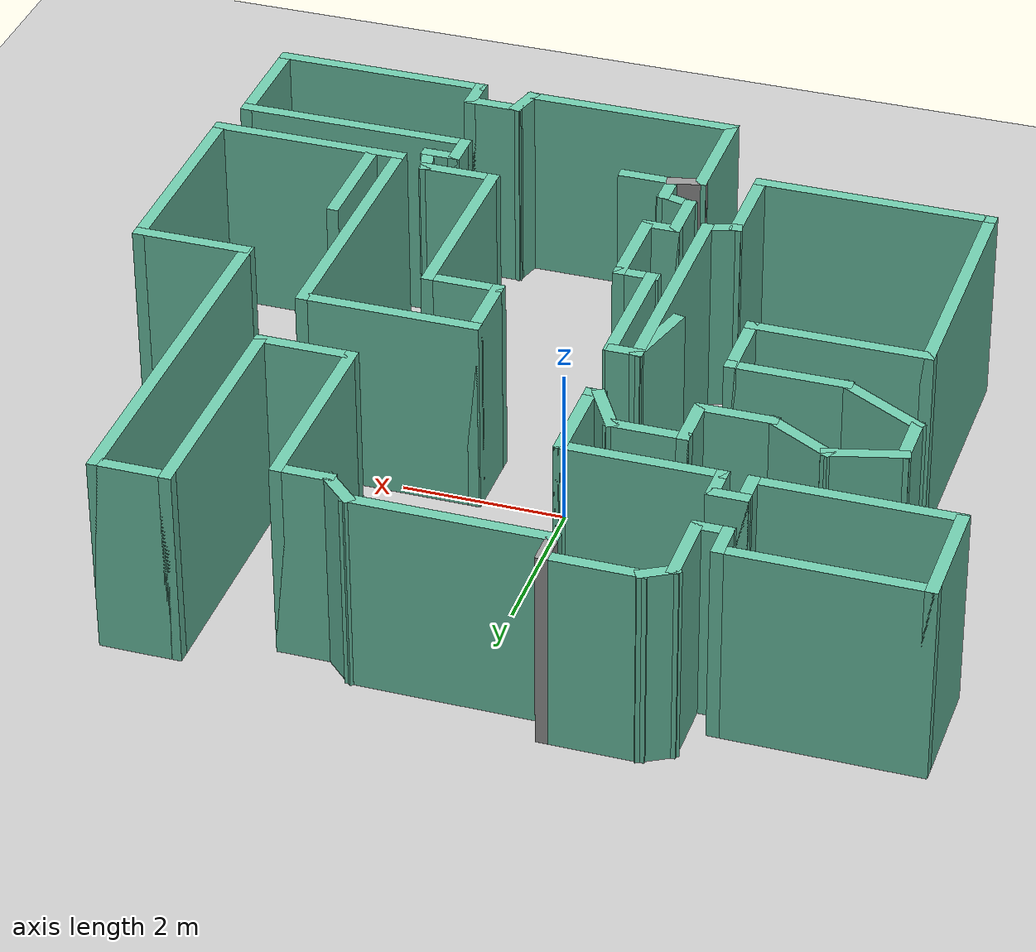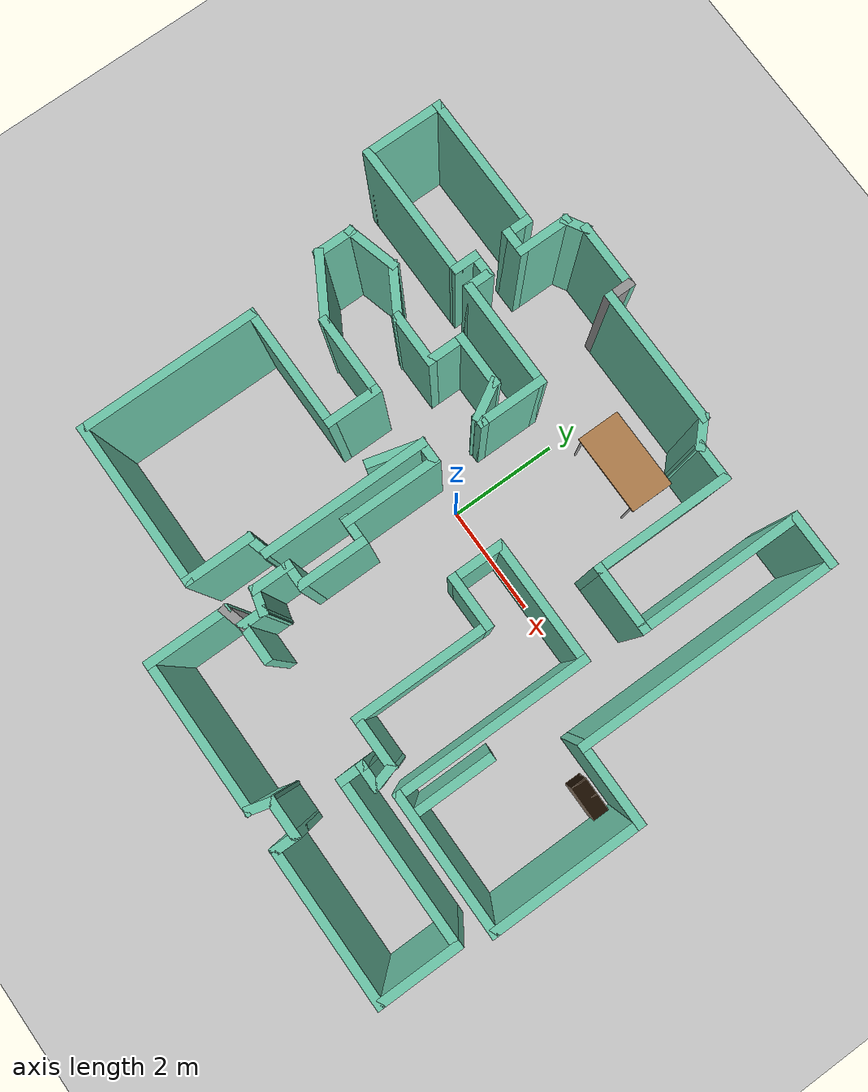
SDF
<sdf version="1.6">
 <world name="default">
  <light name="sun" type="directional">
   <pose>0 0 10 0 -0 0</pose>
   <diffuse>0.8 0.8 0.8 1</diffuse>
   <specular>0.2 0.2 0.2 1</specular>
   <attenuation>
    <range>1000</range>
    <constant>0.9</constant>
    <linear>0.01</linear>
    <quadratic>0.001</quadratic>
   </attenuation>
   <direction>-0.5 0.1 -0.9</direction>
  </light>
  <model name="ground_plane">
   <static>1</static>
   <link name="link">
    <collision name="collision">
     <geometry><plane><normal>0 0 1</normal><size>100 100</size></plane></geometry>
     <surface>
      <contact><collide_bitmask>65535</collide_bitmask></contact>
      <friction><ode><mu>100</mu><mu2>50</mu2></ode></friction>
     </surface>
    </collision>
    <visual name="visual">
     <cast_shadows>0</cast_shadows>
     <geometry><plane><normal>0 0 1</normal><size>100 100</size></plane></geometry>
     <material>
      <script><uri>file://media/materials/scripts/gazebo.material</uri><name>Gazebo/Grey</name></script>
     </material>
    </visual>
   </link>
  </model>
  <gravity>0 0 -9.8</gravity>
  <magnetic_field>6e-06 2.3e-05 -4.2e-05</magnetic_field>
  <atmosphere type="adiabatic"/>
  <physics name="default_physics" default="0" type="ode">
   <max_step_size>0.001</max_step_size>
   <real_time_factor>1</real_time_factor>
   <real_time_update_rate>1000</real_time_update_rate>
  </physics>
  <scene><ambient>0.4 0.4 0.4 1</ambient><background>0.7 0.7 0.7 1</background><shadows>1</shadows></scene>
  <audio><device>default</device></audio>
  <spherical_coordinates>
   <surface_model>EARTH_WGS84</surface_model>
   <latitude_deg>0</latitude_deg>
   <longitude_deg>0</longitude_deg>
   <elevation>0</elevation>
   <heading_deg>0</heading_deg>
  </spherical_coordinates>
  <model name="map_52">
   <pose>0.195887 -0.58659 0 0 -0 0</pose>
   <link name="Wall_0">
    <collision name="Wall_0_Collision">
     <geometry><box><size>2.5 0.15 2.5</size></box></geometry>
     <pose>0 0 1.25 0 -0 0</pose>
    </collision>
    <visual name="Wall_0_Visual">
     <pose>0 0 1.25 0 -0 0</pose>
     <geometry><box><size>2.5 0.15 2.5</size></box></geometry>
     <material>
      <script><uri>file://media/materials/scripts/gazebo.material</uri><name>Gazebo/Grey</name></script>
      <ambient>0.435294 0.796078 0.67451 1</ambient>
     </material>
     <meta><layer>0</layer></meta>
    </visual>
    <pose>-0.063663 4.26519 0 0 -0 3.14159</pose>
   </link>
   <link name="Wall_1">
    <collision name="Wall_1_Collision">
     <geometry><box><size>0.5 0.15 2.5</size></box></geometry>
     <pose>0 0 1.25 0 -0 0</pose>
    </collision>
    <visual name="Wall_1_Visual">
     <pose>0 0 1.25 0 -0 0</pose>
     <geometry><box><size>0.5 0.15 2.5</size></box></geometry>
     <material>
      <script><uri>file://media/materials/scripts/gazebo.material</uri><name>Gazebo/Grey</name></script>
      <ambient>1 1 1 1</ambient>
     </material>
     <meta><layer>0</layer></meta>
    </visual>
    <pose>-1.23866 4.44019 0 0 -0 1.5708</pose>
   </link>
   <link name="Wall_10">
    <collision name="Wall_10_Collision">
     <geometry><box><size>1.5 0.15 2.5</size></box></geometry>
     <pose>0 0 1.25 0 -0 0</pose>
    </collision>
    <visual name="Wall_10_Visual">
     <pose>0 0 1.25 0 -0 0</pose>
     <geometry><box><size>1.5 0.15 2.5</size></box></geometry>
     <material>
      <script><uri>file://media/materials/scripts/gazebo.material</uri><name>Gazebo/Grey</name></script>
      <ambient>0.435294 0.796078 0.67451 1</ambient>
     </material>
     <meta><layer>0</layer></meta>
    </visual>
    <pose>-5.34177 3.26519 0 0 -0 -1.5708</pose>
   </link>
   <link name="Wall_11">
    <collision name="Wall_11_Collision">
     <geometry><box><size>2.5 0.15 2.5</size></box></geometry>
     <pose>0 0 1.25 0 -0 0</pose>
    </collision>
    <visual name="Wall_11_Visual">
     <pose>0 0 1.25 0 -0 0</pose>
     <geometry><box><size>2.5 0.15 2.5</size></box></geometry>
     <material>
      <script><uri>file://media/materials/scripts/gazebo.material</uri><name>Gazebo/Grey</name></script>
      <ambient>0.435294 0.796078 0.67451 1</ambient>
     </material>
     <meta><layer>0</layer></meta>
    </visual>
    <pose>-4.16677 2.59019 0 0 -0 0</pose>
   </link>
   <link name="Wall_12">
    <collision name="Wall_12_Collision">
     <geometry><box><size>0.5 0.15 2.5</size></box></geometry>
     <pose>0 0 1.25 0 -0 0</pose>
    </collision>
    <visual name="Wall_12_Visual">
     <pose>0 0 1.25 0 -0 0</pose>
     <geometry><box><size>0.5 0.15 2.5</size></box></geometry>
     <material>
      <script><uri>file://media/materials/scripts/gazebo.material</uri><name>Gazebo/Grey</name></script>
      <ambient>0.435294 0.796078 0.67451 1</ambient>
     </material>
     <meta><layer>0</layer></meta>
    </visual>
    <pose>-2.99177 2.76519 0 0 -0 1.5708</pose>
   </link>
   <link name="Wall_13">
    <collision name="Wall_13_Collision">
     <geometry><box><size>0.5 0.15 2.5</size></box></geometry>
     <pose>0 0 1.25 0 -0 0</pose>
    </collision>
    <visual name="Wall_13_Visual">
     <pose>0 0 1.25 0 -0 0</pose>
     <geometry><box><size>0.5 0.15 2.5</size></box></geometry>
     <material>
      <script><uri>file://media/materials/scripts/gazebo.material</uri><name>Gazebo/Grey</name></script>
      <ambient>0.435294 0.796078 0.67451 1</ambient>
     </material>
     <meta><layer>0</layer></meta>
    </visual>
    <pose>-2.81677 2.94019 0 0 -0 0</pose>
   </link>
   <link name="Wall_14">
    <collision name="Wall_14_Collision">
     <geometry><box><size>0.5 0.15 2.5</size></box></geometry>
     <pose>0 0 1.25 0 -0 0</pose>
    </collision>
    <visual name="Wall_14_Visual">
     <pose>0 0 1.25 0 -0 0</pose>
     <geometry><box><size>0.5 0.15 2.5</size></box></geometry>
     <material>
      <script><uri>file://media/materials/scripts/gazebo.material</uri><name>Gazebo/Grey</name></script>
      <ambient>0.435294 0.796078 0.67451 1</ambient>
     </material>
     <meta><layer>0</layer></meta>
    </visual>
    <pose>-2.64177 2.76519 0 0 -0 -1.5708</pose>
   </link>
   <link name="Wall_15">
    <collision name="Wall_15_Collision">
     <geometry><box><size>2 0.15 2.5</size></box></geometry>
     <pose>0 0 1.25 0 -0 0</pose>
    </collision>
    <visual name="Wall_15_Visual">
     <pose>0 0 1.25 0 -0 0</pose>
     <geometry><box><size>2 0.15 2.5</size></box></geometry>
     <material>
      <script><uri>file://media/materials/scripts/gazebo.material</uri><name>Gazebo/Grey</name></script>
      <ambient>0.435294 0.796078 0.67451 1</ambient>
     </material>
     <meta><layer>0</layer></meta>
    </visual>
    <pose>-1.71677 2.59019 0 0 -0 0</pose>
   </link>
   <link name="Wall_16">
    <collision name="Wall_16_Collision">
     <geometry><box><size>1.25 0.15 2.5</size></box></geometry>
     <pose>0 0 1.25 0 -0 0</pose>
    </collision>
    <visual name="Wall_16_Visual">
     <pose>0 0 1.25 0 -0 0</pose>
     <geometry><box><size>1.25 0.15 2.5</size></box></geometry>
     <material>
      <script><uri>file://media/materials/scripts/gazebo.material</uri><name>Gazebo/Grey</name></script>
      <ambient>0.435294 0.796078 0.67451 1</ambient>
     </material>
     <meta><layer>0</layer></meta>
    </visual>
    <pose>-0.791772 2.04019 0 0 -0 -1.5708</pose>
   </link>
   <link name="Wall_17">
    <collision name="Wall_17_Collision">
     <geometry><box><size>0.25 0.15 2.5</size></box></geometry>
     <pose>0 0 1.25 0 -0 0</pose>
    </collision>
    <visual name="Wall_17_Visual">
     <pose>0 0 1.25 0 -0 0</pose>
     <geometry><box><size>0.25 0.15 2.5</size></box></geometry>
     <material>
      <script><uri>file://media/materials/scripts/gazebo.material</uri><name>Gazebo/Grey</name></script>
      <ambient>0.435294 0.796078 0.67451 1</ambient>
     </material>
     <meta><layer>0</layer></meta>
    </visual>
    <pose>-0.841772 1.49019 0 0 -0 3.14159</pose>
   </link>
   <link name="Wall_18">
    <collision name="Wall_18_Collision">
     <geometry><box><size>0.75 0.15 2.5</size></box></geometry>
     <pose>0 0 1.25 0 -0 0</pose>
    </collision>
    <visual name="Wall_18_Visual">
     <pose>0 0 1.25 0 -0 0</pose>
     <geometry><box><size>0.75 0.15 2.5</size></box></geometry>
     <material>
      <script><uri>file://media/materials/scripts/gazebo.material</uri><name>Gazebo/Grey</name></script>
      <ambient>0.435294 0.796078 0.67451 1</ambient>
     </material>
     <meta><layer>0</layer></meta>
    </visual>
    <pose>-1.04177 1.74999 0 0 -0 2.0944</pose>
   </link>
   <link name="Wall_19">
    <collision name="Wall_19_Collision">
     <geometry><box><size>1 0.15 2.5</size></box></geometry>
     <pose>0 0 1.25 0 -0 0</pose>
    </collision>
    <visual name="Wall_19_Visual">
     <pose>0 0 1.25 0 -0 0</pose>
     <geometry><box><size>1 0.15 2.5</size></box></geometry>
     <material>
      <script><uri>file://media/materials/scripts/gazebo.material</uri><name>Gazebo/Grey</name></script>
      <ambient>0.435294 0.796078 0.67451 1</ambient>
     </material>
     <meta><layer>0</layer></meta>
    </visual>
    <pose>-1.61677 2.0098 0 0 -0 3.14159</pose>
   </link>
   <link name="Wall_2">
    <collision name="Wall_2_Collision">
     <geometry><box><size>1.25 0.15 2.5</size></box></geometry>
     <pose>0 0 1.25 0 -0 0</pose>
    </collision>
    <visual name="Wall_2_Visual">
     <pose>0 0 1.25 0 -0 0</pose>
     <geometry><box><size>1.25 0.15 2.5</size></box></geometry>
     <material>
      <script><uri>file://media/materials/scripts/gazebo.material</uri><name>Gazebo/Grey</name></script>
      <ambient>0.435294 0.796078 0.67451 1</ambient>
     </material>
     <meta><layer>0</layer></meta>
    </visual>
    <pose>-1.78866 4.61519 0 0 -0 3.14159</pose>
   </link>
   <link name="Wall_20">
    <collision name="Wall_20_Collision">
     <geometry><box><size>0.75 0.15 2.5</size></box></geometry>
     <pose>0 0 1.25 0 -0 0</pose>
    </collision>
    <visual name="Wall_20_Visual">
     <pose>0 0 1.25 0 -0 0</pose>
     <geometry><box><size>0.75 0.15 2.5</size></box></geometry>
     <material>
      <script><uri>file://media/materials/scripts/gazebo.material</uri><name>Gazebo/Grey</name></script>
      <ambient>0.435294 0.796078 0.67451 1</ambient>
     </material>
     <meta><layer>0</layer></meta>
    </visual>
    <pose>-2.04177 1.7098 0 0 -0 -1.5708</pose>
   </link>
   <link name="Wall_21">
    <collision name="Wall_21_Collision">
     <geometry><box><size>1 0.15 2.5</size></box></geometry>
     <pose>0 0 1.25 0 -0 0</pose>
    </collision>
    <visual name="Wall_21_Visual">
     <pose>0 0 1.25 0 -0 0</pose>
     <geometry><box><size>1 0.15 2.5</size></box></geometry>
     <material>
      <script><uri>file://media/materials/scripts/gazebo.material</uri><name>Gazebo/Grey</name></script>
      <ambient>0.435294 0.796078 0.67451 1</ambient>
     </material>
     <meta><layer>0</layer></meta>
    </visual>
    <pose>-2.46677 1.4098 0 0 -0 3.14159</pose>
   </link>
   <link name="Wall_22">
    <collision name="Wall_22_Collision">
     <geometry><box><size>1 0.15 2.5</size></box></geometry>
     <pose>0 0 1.25 0 -0 0</pose>
    </collision>
    <visual name="Wall_22_Visual">
     <pose>0 0 1.25 0 -0 0</pose>
     <geometry><box><size>1 0.15 2.5</size></box></geometry>
     <material>
      <script><uri>file://media/materials/scripts/gazebo.material</uri><name>Gazebo/Grey</name></script>
      <ambient>0.435294 0.796078 0.67451 1</ambient>
     </material>
     <meta><layer>0</layer></meta>
    </visual>
    <pose>-3.25983 1.6223 0 0 -0 2.61799</pose>
   </link>
   <link name="Wall_23">
    <collision name="Wall_23_Collision">
     <geometry><box><size>1 0.15 2.5</size></box></geometry>
     <pose>0 0 1.25 0 -0 0</pose>
    </collision>
    <visual name="Wall_23_Visual">
     <pose>0 0 1.25 0 -0 0</pose>
     <geometry><box><size>1 0.15 2.5</size></box></geometry>
     <material>
      <script><uri>file://media/materials/scripts/gazebo.material</uri><name>Gazebo/Grey</name></script>
      <ambient>0.435294 0.796078 0.67451 1</ambient>
     </material>
     <meta><layer>0</layer></meta>
    </visual>
    <pose>-4.03841 1.7248 0 0 -0 -2.87979</pose>
   </link>
   <link name="Wall_24">
    <collision name="Wall_24_Collision">
     <geometry><box><size>0.75 0.15 2.5</size></box></geometry>
     <pose>0 0 1.25 0 -0 0</pose>
    </collision>
    <visual name="Wall_24_Visual">
     <pose>0 0 1.25 0 -0 0</pose>
     <geometry><box><size>0.75 0.15 2.5</size></box></geometry>
     <material>
      <script><uri>file://media/materials/scripts/gazebo.material</uri><name>Gazebo/Grey</name></script>
      <ambient>0.435294 0.796078 0.67451 1</ambient>
     </material>
     <meta><layer>0</layer></meta>
    </visual>
    <pose>-4.44893 1.31481 0 0 -0 -1.5708</pose>
   </link>
   <link name="Wall_25">
    <collision name="Wall_25_Collision">
     <geometry><box><size>1.25 0.15 2.5</size></box></geometry>
     <pose>0 0 1.25 0 -0 0</pose>
    </collision>
    <visual name="Wall_25_Visual">
     <pose>0 0 1.25 0 -0 0</pose>
     <geometry><box><size>1.25 0.15 2.5</size></box></geometry>
     <material>
      <script><uri>file://media/materials/scripts/gazebo.material</uri><name>Gazebo/Grey</name></script>
      <ambient>0.435294 0.796078 0.67451 1</ambient>
     </material>
     <meta><layer>0</layer></meta>
    </visual>
    <pose>-3.97262 0.739805 0 0 -0 -0.523599</pose>
   </link>
   <link name="Wall_26">
    <collision name="Wall_26_Collision">
     <geometry><box><size>1.5 0.15 2.5</size></box></geometry>
     <pose>0 0 1.25 0 -0 0</pose>
    </collision>
    <visual name="Wall_26_Visual">
     <pose>0 0 1.25 0 -0 0</pose>
     <geometry><box><size>1.5 0.15 2.5</size></box></geometry>
     <material>
      <script><uri>file://media/materials/scripts/gazebo.material</uri><name>Gazebo/Grey</name></script>
      <ambient>0.435294 0.796078 0.67451 1</ambient>
     </material>
     <meta><layer>0</layer></meta>
    </visual>
    <pose>-2.8213 0.464805 0 0 -0 0</pose>
   </link>
   <link name="Wall_29">
    <collision name="Wall_29_Collision">
     <geometry><box><size>1 0.15 2.5</size></box></geometry>
     <pose>0 0 1.25 0 -0 0</pose>
    </collision>
    <visual name="Wall_29_Visual">
     <pose>0 0 1.25 0 -0 0</pose>
     <geometry><box><size>1 0.15 2.5</size></box></geometry>
     <material>
      <script><uri>file://media/materials/scripts/gazebo.material</uri><name>Gazebo/Grey</name></script>
      <ambient>0.435294 0.796078 0.67451 1</ambient>
     </material>
     <meta><layer>0</layer></meta>
    </visual>
    <pose>-2.1463 0.039805 0 0 -0 -1.5708</pose>
   </link>
   <link name="Wall_3">
    <collision name="Wall_3_Collision">
     <geometry><box><size>0.5 0.15 2.5</size></box></geometry>
     <pose>0 0 1.25 0 -0 0</pose>
    </collision>
    <visual name="Wall_3_Visual">
     <pose>0 0 1.25 0 -0 0</pose>
     <geometry><box><size>0.5 0.15 2.5</size></box></geometry>
     <material>
      <script><uri>file://media/materials/scripts/gazebo.material</uri><name>Gazebo/Grey</name></script>
      <ambient>0.435294 0.796078 0.67451 1</ambient>
     </material>
     <meta><layer>0</layer></meta>
    </visual>
    <pose>-2.49022 4.52769 0 0 -0 -2.61799</pose>
   </link>
   <link name="Wall_30">
    <collision name="Wall_30_Collision">
     <geometry><box><size>2.25 0.15 2.5</size></box></geometry>
     <pose>0 0 1.25 0 -0 0</pose>
    </collision>
    <visual name="Wall_30_Visual">
     <pose>0 0 1.25 0 -0 0</pose>
     <geometry><box><size>2.25 0.15 2.5</size></box></geometry>
     <material>
      <script><uri>file://media/materials/scripts/gazebo.material</uri><name>Gazebo/Grey</name></script>
      <ambient>0.435294 0.796078 0.67451 1</ambient>
     </material>
     <meta><layer>0</layer></meta>
    </visual>
    <pose>-3.1963 -0.385195 0 0 -0 3.14159</pose>
   </link>
   <link name="Wall_31">
    <collision name="Wall_31_Collision">
     <geometry><box><size>3.25 0.15 2.5</size></box></geometry>
     <pose>0 0 1.25 0 -0 0</pose>
    </collision>
    <visual name="Wall_31_Visual">
     <pose>0 0 1.25 0 -0 0</pose>
     <geometry><box><size>3.25 0.15 2.5</size></box></geometry>
     <material>
      <script><uri>file://media/materials/scripts/gazebo.material</uri><name>Gazebo/Grey</name></script>
      <ambient>0.435294 0.796078 0.67451 1</ambient>
     </material>
     <meta><layer>0</layer></meta>
    </visual>
    <pose>-4.2463 -1.93519 0 0 -0 -1.5708</pose>
   </link>
   <link name="Wall_32">
    <collision name="Wall_32_Collision">
     <geometry><box><size>3 0.15 2.5</size></box></geometry>
     <pose>0 0 1.25 0 -0 0</pose>
    </collision>
    <visual name="Wall_32_Visual">
     <pose>0 0 1.25 0 -0 0</pose>
     <geometry><box><size>3 0.15 2.5</size></box></geometry>
     <material>
      <script><uri>file://media/materials/scripts/gazebo.material</uri><name>Gazebo/Grey</name></script>
      <ambient>0.435294 0.796078 0.67451 1</ambient>
     </material>
     <meta><layer>0</layer></meta>
    </visual>
    <pose>-2.8213 -3.4852 0 0 -0 0</pose>
   </link>
   <link name="Wall_33">
    <collision name="Wall_33_Collision">
     <geometry><box><size>1.25 0.15 2.5</size></box></geometry>
     <pose>0 0 1.25 0 -0 0</pose>
    </collision>
    <visual name="Wall_33_Visual">
     <pose>0 0 1.25 0 -0 0</pose>
     <geometry><box><size>1.25 0.15 2.5</size></box></geometry>
     <material>
      <script><uri>file://media/materials/scripts/gazebo.material</uri><name>Gazebo/Grey</name></script>
      <ambient>0.435294 0.796078 0.67451 1</ambient>
     </material>
     <meta><layer>0</layer></meta>
    </visual>
    <pose>-1.3963 -2.9352 0 0 -0 1.5708</pose>
   </link>
   <link name="Wall_34">
    <collision name="Wall_34_Collision">
     <geometry><box><size>0.5 0.15 2.5</size></box></geometry>
     <pose>0 0 1.25 0 -0 0</pose>
    </collision>
    <visual name="Wall_34_Visual">
     <pose>0 0 1.25 0 -0 0</pose>
     <geometry><box><size>0.5 0.15 2.5</size></box></geometry>
     <material>
      <script><uri>file://media/materials/scripts/gazebo.material</uri><name>Gazebo/Grey</name></script>
      <ambient>0.435294 0.796078 0.67451 1</ambient>
     </material>
     <meta><layer>0</layer></meta>
    </visual>
    <pose>-1.22727 -2.3399 0 0 -0 0.261799</pose>
   </link>
   <link name="Wall_35">
    <collision name="Wall_35_Collision">
     <geometry><box><size>3 0.15 2.5</size></box></geometry>
     <pose>0 0 1.25 0 -0 0</pose>
    </collision>
    <visual name="Wall_35_Visual">
     <pose>0 0 1.25 0 -0 0</pose>
     <geometry><box><size>3 0.15 2.5</size></box></geometry>
     <material>
      <script><uri>file://media/materials/scripts/gazebo.material</uri><name>Gazebo/Grey</name></script>
      <ambient>0.435294 0.796078 0.67451 1</ambient>
     </material>
     <meta><layer>0</layer></meta>
    </visual>
    <pose>-1.05823 -0.869609 0 0 -0 1.5708</pose>
   </link>
   <link name="Wall_36">
    <collision name="Wall_36_Collision">
     <geometry><box><size>0.43882 0.15 2.5</size></box></geometry>
     <pose>0 0 1.25 0 -0 0</pose>
    </collision>
    <visual name="Wall_36_Visual">
     <pose>0 0 1.25 0 -0 0</pose>
     <geometry><box><size>0.43882 0.15 2.5</size></box></geometry>
     <material>
      <script><uri>file://media/materials/scripts/gazebo.material</uri><name>Gazebo/Grey</name></script>
      <ambient>0.435294 0.796078 0.67451 1</ambient>
     </material>
     <meta><layer>0</layer></meta>
    </visual>
    <pose>-0.913819 0.555391 0 0 -0 0</pose>
   </link>
   <link name="Wall_4">
    <collision name="Wall_4_Collision">
     <geometry><box><size>1 0.15 2.5</size></box></geometry>
     <pose>0 0 1.25 0 -0 0</pose>
    </collision>
    <visual name="Wall_4_Visual">
     <pose>0 0 1.25 0 -0 0</pose>
     <geometry><box><size>1 0.15 2.5</size></box></geometry>
     <material>
      <script><uri>file://media/materials/scripts/gazebo.material</uri><name>Gazebo/Grey</name></script>
      <ambient>0.435294 0.796078 0.67451 1</ambient>
     </material>
     <meta><layer>0</layer></meta>
    </visual>
    <pose>-2.64177 4.01519 0 0 -0 -1.5708</pose>
   </link>
   <link name="Wall_41">
    <collision name="Wall_41_Collision">
     <geometry><box><size>1.75 0.15 2.5</size></box></geometry>
     <pose>0 0 1.25 0 -0 0</pose>
    </collision>
    <visual name="Wall_41_Visual">
     <pose>0 0 1.25 0 -0 0</pose>
     <geometry><box><size>1.75 0.15 2.5</size></box></geometry>
     <material>
      <script><uri>file://media/materials/scripts/gazebo.material</uri><name>Gazebo/Grey</name></script>
      <ambient>0.435294 0.796078 0.67451 1</ambient>
     </material>
     <meta><layer>0</layer></meta>
    </visual>
    <pose>-0.738819 -0.244609 0 0 -0 -1.5708</pose>
   </link>
   <link name="Wall_42">
    <collision name="Wall_42_Collision">
     <geometry><box><size>0.56118 0.15 2.5</size></box></geometry>
     <pose>0 0 1.25 0 -0 0</pose>
    </collision>
    <visual name="Wall_42_Visual">
     <pose>0 0 1.25 0 -0 0</pose>
     <geometry><box><size>0.56118 0.15 2.5</size></box></geometry>
     <material>
      <script><uri>file://media/materials/scripts/gazebo.material</uri><name>Gazebo/Grey</name></script>
      <ambient>0.435294 0.796078 0.67451 1</ambient>
     </material>
     <meta><layer>0</layer></meta>
    </visual>
    <pose>-0.563819 -1.04461 0 0 -0 0</pose>
   </link>
   <link name="Wall_43">
    <collision name="Wall_43_Collision">
     <geometry><box><size>1.25 0.15 2.5</size></box></geometry>
     <pose>0 0 1.25 0 -0 0</pose>
    </collision>
    <visual name="Wall_43_Visual">
     <pose>0 0 1.25 0 -0 0</pose>
     <geometry><box><size>1.25 0.15 2.5</size></box></geometry>
     <material>
      <script><uri>file://media/materials/scripts/gazebo.material</uri><name>Gazebo/Grey</name></script>
      <ambient>0.435294 0.796078 0.67451 1</ambient>
     </material>
     <meta><layer>0</layer></meta>
    </visual>
    <pose>-0.358229 -1.59461 0 0 -0 -1.5708</pose>
   </link>
   <link name="Wall_44">
    <collision name="Wall_44_Collision">
     <geometry><box><size>0.5 0.15 2.5</size></box></geometry>
     <pose>0 0 1.25 0 -0 0</pose>
    </collision>
    <visual name="Wall_44_Visual">
     <pose>0 0 1.25 0 -0 0</pose>
     <geometry><box><size>0.5 0.15 2.5</size></box></geometry>
     <material>
      <script><uri>file://media/materials/scripts/gazebo.material</uri><name>Gazebo/Grey</name></script>
      <ambient>0.435294 0.796078 0.67451 1</ambient>
     </material>
     <meta><layer>0</layer></meta>
    </visual>
    <pose>-0.533229 -2.14461 0 0 -0 3.14159</pose>
   </link>
   <link name="Wall_45">
    <collision name="Wall_45_Collision">
     <geometry><box><size>0.75 0.15 2.5</size></box></geometry>
     <pose>0 0 1.25 0 -0 0</pose>
    </collision>
    <visual name="Wall_45_Visual">
     <pose>0 0 1.25 0 -0 0</pose>
     <geometry><box><size>0.75 0.15 2.5</size></box></geometry>
     <material>
      <script><uri>file://media/materials/scripts/gazebo.material</uri><name>Gazebo/Grey</name></script>
      <ambient>0.435294 0.796078 0.67451 1</ambient>
     </material>
     <meta><layer>0</layer></meta>
    </visual>
    <pose>-0.708229 -2.44461 0 0 -0 -1.5708</pose>
   </link>
   <link name="Wall_46">
    <collision name="Wall_46_Collision">
     <geometry><box><size>0.5 0.15 2.5</size></box></geometry>
     <pose>0 0 1.25 0 -0 0</pose>
    </collision>
    <visual name="Wall_46_Visual">
     <pose>0 0 1.25 0 -0 0</pose>
     <geometry><box><size>0.5 0.15 2.5</size></box></geometry>
     <material>
      <script><uri>file://media/materials/scripts/gazebo.material</uri><name>Gazebo/Grey</name></script>
      <ambient>0.435294 0.796078 0.67451 1</ambient>
     </material>
     <meta><layer>0</layer></meta>
    </visual>
    <pose>-0.539191 -2.7899 0 0 -0 -0.261799</pose>
   </link>
   <link name="Wall_47">
    <collision name="Wall_47_Collision">
     <geometry><box><size>0.5 0.15 2.5</size></box></geometry>
     <pose>0 0 1.25 0 -0 0</pose>
    </collision>
    <visual name="Wall_47_Visual">
     <pose>0 0 1.25 0 -0 0</pose>
     <geometry><box><size>0.5 0.15 2.5</size></box></geometry>
     <material>
      <script><uri>file://media/materials/scripts/gazebo.material</uri><name>Gazebo/Grey</name></script>
      <ambient>0.435294 0.796078 0.67451 1</ambient>
     </material>
     <meta><layer>0</layer></meta>
    </visual>
    <pose>-0.370155 -3.01019 0 0 -0 -1.5708</pose>
   </link>
   <link name="Wall_48">
    <collision name="Wall_48_Collision">
     <geometry><box><size>0.5 0.15 2.5</size></box></geometry>
     <pose>0 0 1.25 0 -0 0</pose>
    </collision>
    <visual name="Wall_48_Visual">
     <pose>0 0 1.25 0 -0 0</pose>
     <geometry><box><size>0.5 0.15 2.5</size></box></geometry>
     <material>
      <script><uri>file://media/materials/scripts/gazebo.material</uri><name>Gazebo/Grey</name></script>
      <ambient>1 1 1 1</ambient>
     </material>
     <meta><layer>0</layer></meta>
    </visual>
    <pose>-0.539191 -3.23049 0 0 -0 -2.87979</pose>
   </link>
   <link name="Wall_49">
    <collision name="Wall_49_Collision">
     <geometry><box><size>1.5 0.15 2.5</size></box></geometry>
     <pose>0 0 1.25 0 -0 0</pose>
    </collision>
    <visual name="Wall_49_Visual">
     <pose>0 0 1.25 0 -0 0</pose>
     <geometry><box><size>1.5 0.15 2.5</size></box></geometry>
     <material>
      <script><uri>file://media/materials/scripts/gazebo.material</uri><name>Gazebo/Grey</name></script>
      <ambient>0.435294 0.796078 0.67451 1</ambient>
     </material>
     <meta><layer>0</layer></meta>
    </visual>
    <pose>-0.708229 -3.95078 0 0 -0 -1.5708</pose>
   </link>
   <link name="Wall_50">
    <collision name="Wall_50_Collision">
     <geometry><box><size>2.75 0.15 2.5</size></box></geometry>
     <pose>0 0 1.25 0 -0 0</pose>
    </collision>
    <visual name="Wall_50_Visual">
     <pose>0 0 1.25 0 -0 0</pose>
     <geometry><box><size>2.75 0.15 2.5</size></box></geometry>
     <material>
      <script><uri>file://media/materials/scripts/gazebo.material</uri><name>Gazebo/Grey</name></script>
      <ambient>0.435294 0.796078 0.67451 1</ambient>
     </material>
     <meta><layer>0</layer></meta>
    </visual>
    <pose>0.591771 -4.62578 0 0 -0 0</pose>
   </link>
   <link name="Wall_55">
    <collision name="Wall_55_Collision">
     <geometry><box><size>0.5 0.15 2.5</size></box></geometry>
     <pose>0 0 1.25 0 -0 0</pose>
    </collision>
    <visual name="Wall_55_Visual">
     <pose>0 0 1.25 0 -0 0</pose>
     <geometry><box><size>0.5 0.15 2.5</size></box></geometry>
     <material>
      <script><uri>file://media/materials/scripts/gazebo.material</uri><name>Gazebo/Grey</name></script>
      <ambient>0.435294 0.796078 0.67451 1</ambient>
     </material>
     <meta><layer>0</layer></meta>
    </visual>
    <pose>1.93707 -4.45674 0 0 -0 1.309</pose>
   </link>
   <link name="Wall_56">
    <collision name="Wall_56_Collision">
     <geometry><box><size>0.75 0.15 2.5</size></box></geometry>
     <pose>0 0 1.25 0 -0 0</pose>
    </collision>
    <visual name="Wall_56_Visual">
     <pose>0 0 1.25 0 -0 0</pose>
     <geometry><box><size>0.75 0.15 2.5</size></box></geometry>
     <material>
      <script><uri>file://media/materials/scripts/gazebo.material</uri><name>Gazebo/Grey</name></script>
      <ambient>0.435294 0.796078 0.67451 1</ambient>
     </material>
     <meta><layer>0</layer></meta>
    </visual>
    <pose>2.28236 -4.28771 0 0 -0 0</pose>
   </link>
   <link name="Wall_57">
    <collision name="Wall_57_Collision">
     <geometry><box><size>0.5 0.15 2.5</size></box></geometry>
     <pose>0 0 1.25 0 -0 0</pose>
    </collision>
    <visual name="Wall_57_Visual">
     <pose>0 0 1.25 0 -0 0</pose>
     <geometry><box><size>0.5 0.15 2.5</size></box></geometry>
     <material>
      <script><uri>file://media/materials/scripts/gazebo.material</uri><name>Gazebo/Grey</name></script>
      <ambient>0.435294 0.796078 0.67451 1</ambient>
     </material>
     <meta><layer>0</layer></meta>
    </visual>
    <pose>2.58236 -4.46271 0 0 -0 -1.5708</pose>
   </link>
   <link name="Wall_58">
    <collision name="Wall_58_Collision">
     <geometry><box><size>2.75 0.15 2.5</size></box></geometry>
     <pose>0 0 1.25 0 -0 0</pose>
    </collision>
    <visual name="Wall_58_Visual">
     <pose>0 0 1.25 0 -0 0</pose>
     <geometry><box><size>2.75 0.15 2.5</size></box></geometry>
     <material>
      <script><uri>file://media/materials/scripts/gazebo.material</uri><name>Gazebo/Grey</name></script>
      <ambient>0.435294 0.796078 0.67451 1</ambient>
     </material>
     <meta><layer>0</layer></meta>
    </visual>
    <pose>3.88236 -4.63771 0 0 -0 0</pose>
   </link>
   <link name="Wall_59">
    <collision name="Wall_59_Collision">
     <geometry><box><size>1.5 0.15 2.5</size></box></geometry>
     <pose>0 0 1.25 0 -0 0</pose>
    </collision>
    <visual name="Wall_59_Visual">
     <pose>0 0 1.25 0 -0 0</pose>
     <geometry><box><size>1.5 0.15 2.5</size></box></geometry>
     <material>
      <script><uri>file://media/materials/scripts/gazebo.material</uri><name>Gazebo/Grey</name></script>
      <ambient>0.435294 0.796078 0.67451 1</ambient>
     </material>
     <meta><layer>0</layer></meta>
    </visual>
    <pose>5.18236 -3.96271 0 0 -0 1.5708</pose>
   </link>
   <link name="Wall_60">
    <collision name="Wall_60_Collision">
     <geometry><box><size>3 0.15 2.5</size></box></geometry>
     <pose>0 0 1.25 0 -0 0</pose>
    </collision>
    <visual name="Wall_60_Visual">
     <pose>0 0 1.25 0 -0 0</pose>
     <geometry><box><size>3 0.15 2.5</size></box></geometry>
     <material>
      <script><uri>file://media/materials/scripts/gazebo.material</uri><name>Gazebo/Grey</name></script>
      <ambient>0.435294 0.796078 0.67451 1</ambient>
     </material>
     <meta><layer>0</layer></meta>
    </visual>
    <pose>3.75736 -3.28771 0 0 -0 3.14159</pose>
   </link>
   <link name="Wall_61">
    <collision name="Wall_61_Collision">
     <geometry><box><size>0.5 0.15 2.5</size></box></geometry>
     <pose>0 0 1.25 0 -0 0</pose>
    </collision>
    <visual name="Wall_61_Visual">
     <pose>0 0 1.25 0 -0 0</pose>
     <geometry><box><size>0.5 0.15 2.5</size></box></geometry>
     <material>
      <script><uri>file://media/materials/scripts/gazebo.material</uri><name>Gazebo/Grey</name></script>
      <ambient>0.435294 0.796078 0.67451 1</ambient>
     </material>
     <meta><layer>0</layer></meta>
    </visual>
    <pose>2.33236 -3.11271 0 0 -0 1.5708</pose>
   </link>
   <link name="Wall_62">
    <collision name="Wall_62_Collision">
     <geometry><box><size>0.5 0.15 2.5</size></box></geometry>
     <pose>0 0 1.25 0 -0 0</pose>
    </collision>
    <visual name="Wall_62_Visual">
     <pose>0 0 1.25 0 -0 0</pose>
     <geometry><box><size>0.5 0.15 2.5</size></box></geometry>
     <material>
      <script><uri>file://media/materials/scripts/gazebo.material</uri><name>Gazebo/Grey</name></script>
      <ambient>0.435294 0.796078 0.67451 1</ambient>
     </material>
     <meta><layer>0</layer></meta>
    </visual>
    <pose>2.50736 -2.93771 0 0 -0 0</pose>
   </link>
   <link name="Wall_63">
    <collision name="Wall_63_Collision">
     <geometry><box><size>0.5 0.15 2.5</size></box></geometry>
     <pose>0 0 1.25 0 -0 0</pose>
    </collision>
    <visual name="Wall_63_Visual">
     <pose>0 0 1.25 0 -0 0</pose>
     <geometry><box><size>0.5 0.15 2.5</size></box></geometry>
     <material>
      <script><uri>file://media/materials/scripts/gazebo.material</uri><name>Gazebo/Grey</name></script>
      <ambient>0.435294 0.796078 0.67451 1</ambient>
     </material>
     <meta><layer>0</layer></meta>
    </visual>
    <pose>2.63707 -2.76867 0 0 -0 1.8326</pose>
   </link>
   <link name="Wall_64">
    <collision name="Wall_64_Collision">
     <geometry><box><size>1 0.15 2.5</size></box></geometry>
     <pose>0 0 1.25 0 -0 0</pose>
    </collision>
    <visual name="Wall_64_Visual">
     <pose>0 0 1.25 0 -0 0</pose>
     <geometry><box><size>1 0.15 2.5</size></box></geometry>
     <material>
      <script><uri>file://media/materials/scripts/gazebo.material</uri><name>Gazebo/Grey</name></script>
      <ambient>0.435294 0.796078 0.67451 1</ambient>
     </material>
     <meta><layer>0</layer></meta>
    </visual>
    <pose>2.16677 -2.59963 0 0 -0 3.14159</pose>
   </link>
   <link name="Wall_65">
    <collision name="Wall_65_Collision">
     <geometry><box><size>2.5 0.15 2.5</size></box></geometry>
     <pose>0 0 1.25 0 -0 0</pose>
    </collision>
    <visual name="Wall_65_Visual">
     <pose>0 0 1.25 0 -0 0</pose>
     <geometry><box><size>2.5 0.15 2.5</size></box></geometry>
     <material>
      <script><uri>file://media/materials/scripts/gazebo.material</uri><name>Gazebo/Grey</name></script>
      <ambient>0.435294 0.796078 0.67451 1</ambient>
     </material>
     <meta><layer>0</layer></meta>
    </visual>
    <pose>1.74177 -1.42463 0 0 -0 1.5708</pose>
   </link>
   <link name="Wall_66">
    <collision name="Wall_66_Collision">
     <geometry><box><size>1 0.15 2.5</size></box></geometry>
     <pose>0 0 1.25 0 -0 0</pose>
    </collision>
    <visual name="Wall_66_Visual">
     <pose>0 0 1.25 0 -0 0</pose>
     <geometry><box><size>1 0.15 2.5</size></box></geometry>
     <material>
      <script><uri>file://media/materials/scripts/gazebo.material</uri><name>Gazebo/Grey</name></script>
      <ambient>0.435294 0.796078 0.67451 1</ambient>
     </material>
     <meta><layer>0</layer></meta>
    </visual>
    <pose>1.31677 -0.249634 0 0 -0 3.14159</pose>
   </link>
   <link name="Wall_67">
    <collision name="Wall_67_Collision">
     <geometry><box><size>1 0.15 2.5</size></box></geometry>
     <pose>0 0 1.25 0 -0 0</pose>
    </collision>
    <visual name="Wall_67_Visual">
     <pose>0 0 1.25 0 -0 0</pose>
     <geometry><box><size>1 0.15 2.5</size></box></geometry>
     <material>
      <script><uri>file://media/materials/scripts/gazebo.material</uri><name>Gazebo/Grey</name></script>
      <ambient>0.435294 0.796078 0.67451 1</ambient>
     </material>
     <meta><layer>0</layer></meta>
    </visual>
    <pose>0.891771 0.175366 0 0 -0 1.5708</pose>
   </link>
   <link name="Wall_68">
    <collision name="Wall_68_Collision">
     <geometry><box><size>2.25 0.15 2.5</size></box></geometry>
     <pose>0 0 1.25 0 -0 0</pose>
    </collision>
    <visual name="Wall_68_Visual">
     <pose>0 0 1.25 0 -0 0</pose>
     <geometry><box><size>2.25 0.15 2.5</size></box></geometry>
     <material>
      <script><uri>file://media/materials/scripts/gazebo.material</uri><name>Gazebo/Grey</name></script>
      <ambient>0.435294 0.796078 0.67451 1</ambient>
     </material>
     <meta><layer>0</layer></meta>
    </visual>
    <pose>1.94177 0.600366 0 0 -0 0</pose>
   </link>
   <link name="Wall_69">
    <collision name="Wall_69_Collision">
     <geometry><box><size>3.5 0.15 2.5</size></box></geometry>
     <pose>0 0 1.25 0 -0 0</pose>
    </collision>
    <visual name="Wall_69_Visual">
     <pose>0 0 1.25 0 -0 0</pose>
     <geometry><box><size>3.5 0.15 2.5</size></box></geometry>
     <material>
      <script><uri>file://media/materials/scripts/gazebo.material</uri><name>Gazebo/Grey</name></script>
      <ambient>0.435294 0.796078 0.67451 1</ambient>
     </material>
     <meta><layer>0</layer></meta>
    </visual>
    <pose>2.99177 -1.07463 0 0 -0 -1.5708</pose>
   </link>
   <link name="Wall_7">
    <collision name="Wall_7_Collision">
     <geometry><box><size>0.5 0.15 2.5</size></box></geometry>
     <pose>0 0 1.25 0 -0 0</pose>
    </collision>
    <visual name="Wall_7_Visual">
     <pose>0 0 1.25 0 -0 0</pose>
     <geometry><box><size>0.5 0.15 2.5</size></box></geometry>
     <material>
      <script><uri>file://media/materials/scripts/gazebo.material</uri><name>Gazebo/Grey</name></script>
      <ambient>0.435294 0.796078 0.67451 1</ambient>
     </material>
     <meta><layer>0</layer></meta>
    </visual>
    <pose>-2.81677 3.59019 0 0 -0 3.14159</pose>
   </link>
   <link name="Wall_70">
    <collision name="Wall_70_Collision">
     <geometry><box><size>2.5 0.15 2.5</size></box></geometry>
     <pose>0 0 1.25 0 -0 0</pose>
    </collision>
    <visual name="Wall_70_Visual">
     <pose>0 0 1.25 0 -0 0</pose>
     <geometry><box><size>2.5 0.15 2.5</size></box></geometry>
     <material>
      <script><uri>file://media/materials/scripts/gazebo.material</uri><name>Gazebo/Grey</name></script>
      <ambient>0.435294 0.796078 0.67451 1</ambient>
     </material>
     <meta><layer>0</layer></meta>
    </visual>
    <pose>4.16677 -2.74963 0 0 -0 0</pose>
   </link>
   <link name="Wall_71">
    <collision name="Wall_71_Collision">
     <geometry><box><size>2.75 0.15 2.5</size></box></geometry>
     <pose>0 0 1.25 0 -0 0</pose>
    </collision>
    <visual name="Wall_71_Visual">
     <pose>0 0 1.25 0 -0 0</pose>
     <geometry><box><size>2.75 0.15 2.5</size></box></geometry>
     <material>
      <script><uri>file://media/materials/scripts/gazebo.material</uri><name>Gazebo/Grey</name></script>
      <ambient>0.435294 0.796078 0.67451 1</ambient>
     </material>
     <meta><layer>0</layer></meta>
    </visual>
    <pose>5.34177 -1.44963 0 0 -0 1.5708</pose>
   </link>
   <link name="Wall_72">
    <collision name="Wall_72_Collision">
     <geometry><box><size>1.5 0.15 2.5</size></box></geometry>
     <pose>0 0 1.25 0 -0 0</pose>
    </collision>
    <visual name="Wall_72_Visual">
     <pose>0 0 1.25 0 -0 0</pose>
     <geometry><box><size>1.5 0.15 2.5</size></box></geometry>
     <material>
      <script><uri>file://media/materials/scripts/gazebo.material</uri><name>Gazebo/Grey</name></script>
      <ambient>0.435294 0.796078 0.67451 1</ambient>
     </material>
     <meta><layer>0</layer></meta>
    </visual>
    <pose>4.66677 -0.149634 0 0 -0 3.14159</pose>
   </link>
   <link name="Wall_73">
    <collision name="Wall_73_Collision">
     <geometry><box><size>4.75 0.15 2.5</size></box></geometry>
     <pose>0 0 1.25 0 -0 0</pose>
    </collision>
    <visual name="Wall_73_Visual">
     <pose>0 0 1.25 0 -0 0</pose>
     <geometry><box><size>4.75 0.15 2.5</size></box></geometry>
     <material>
      <script><uri>file://media/materials/scripts/gazebo.material</uri><name>Gazebo/Grey</name></script>
      <ambient>0.435294 0.796078 0.67451 1</ambient>
     </material>
     <meta><layer>0</layer></meta>
    </visual>
    <pose>3.99177 2.15037 0 0 -0 1.5708</pose>
   </link>
   <link name="Wall_74">
    <collision name="Wall_74_Collision">
     <geometry><box><size>1 0.15 2.5</size></box></geometry>
     <pose>0 0 1.25 0 -0 0</pose>
    </collision>
    <visual name="Wall_74_Visual">
     <pose>0 0 1.25 0 -0 0</pose>
     <geometry><box><size>1 0.15 2.5</size></box></geometry>
     <material>
      <script><uri>file://media/materials/scripts/gazebo.material</uri><name>Gazebo/Grey</name></script>
      <ambient>0.435294 0.796078 0.67451 1</ambient>
     </material>
     <meta><layer>0</layer></meta>
    </visual>
    <pose>3.56677 4.45037 0 0 -0 3.14159</pose>
   </link>
   <link name="Wall_75">
    <collision name="Wall_75_Collision">
     <geometry><box><size>3 0.15 2.5</size></box></geometry>
     <pose>0 0 1.25 0 -0 0</pose>
    </collision>
    <visual name="Wall_75_Visual">
     <pose>0 0 1.25 0 -0 0</pose>
     <geometry><box><size>3 0.15 2.5</size></box></geometry>
     <material>
      <script><uri>file://media/materials/scripts/gazebo.material</uri><name>Gazebo/Grey</name></script>
      <ambient>0.435294 0.796078 0.67451 1</ambient>
     </material>
     <meta><layer>0</layer></meta>
    </visual>
    <pose>3.14177 3.02537 0 0 -0 -1.5708</pose>
   </link>
   <link name="Wall_76">
    <collision name="Wall_76_Collision">
     <geometry><box><size>1.25 0.15 2.5</size></box></geometry>
     <pose>0 0 1.25 0 -0 0</pose>
    </collision>
    <visual name="Wall_76_Visual">
     <pose>0 0 1.25 0 -0 0</pose>
     <geometry><box><size>1.25 0.15 2.5</size></box></geometry>
     <material>
      <script><uri>file://media/materials/scripts/gazebo.material</uri><name>Gazebo/Grey</name></script>
      <ambient>0.435294 0.796078 0.67451 1</ambient>
     </material>
     <meta><layer>0</layer></meta>
    </visual>
    <pose>2.59177 1.60037 0 0 -0 3.14159</pose>
   </link>
   <link name="Wall_77">
    <collision name="Wall_77_Collision">
     <geometry><box><size>2.5 0.15 2.5</size></box></geometry>
     <pose>0 0 1.25 0 -0 0</pose>
    </collision>
    <visual name="Wall_77_Visual">
     <pose>0 0 1.25 0 -0 0</pose>
     <geometry><box><size>2.5 0.15 2.5</size></box></geometry>
     <material>
      <script><uri>file://media/materials/scripts/gazebo.material</uri><name>Gazebo/Grey</name></script>
      <ambient>0.435294 0.796078 0.67451 1</ambient>
     </material>
     <meta><layer>0</layer></meta>
    </visual>
    <pose>2.04177 2.77537 0 0 -0 1.5708</pose>
   </link>
   <link name="Wall_78">
    <collision name="Wall_78_Collision">
     <geometry><box><size>0.75 0.15 2.5</size></box></geometry>
     <pose>0 0 1.25 0 -0 0</pose>
    </collision>
    <visual name="Wall_78_Visual">
     <pose>0 0 1.25 0 -0 0</pose>
     <geometry><box><size>0.75 0.15 2.5</size></box></geometry>
     <material>
      <script><uri>file://media/materials/scripts/gazebo.material</uri><name>Gazebo/Grey</name></script>
      <ambient>0.435294 0.796078 0.67451 1</ambient>
     </material>
     <meta><layer>0</layer></meta>
    </visual>
    <pose>1.74177 3.95037 0 0 -0 3.14159</pose>
   </link>
   <link name="Wall_8">
    <collision name="Wall_8_Collision">
     <geometry><box><size>0.5 0.15 2.5</size></box></geometry>
     <pose>0 0 1.25 0 -0 0</pose>
    </collision>
    <visual name="Wall_8_Visual">
     <pose>0 0 1.25 0 -0 0</pose>
     <geometry><box><size>0.5 0.15 2.5</size></box></geometry>
     <material>
      <script><uri>file://media/materials/scripts/gazebo.material</uri><name>Gazebo/Grey</name></script>
      <ambient>0.435294 0.796078 0.67451 1</ambient>
     </material>
     <meta><layer>0</layer></meta>
    </visual>
    <pose>-2.99177 3.76519 0 0 -0 1.5708</pose>
   </link>
   <link name="Wall_80">
    <collision name="Wall_80_Collision">
     <geometry><box><size>0.606397 0.15 2.5</size></box></geometry>
     <pose>0 0 1.25 0 -0 0</pose>
    </collision>
    <visual name="Wall_80_Visual">
     <pose>0 0 1.25 0 -0 0</pose>
     <geometry><box><size>0.606397 0.15 2.5</size></box></geometry>
     <material>
      <script><uri>file://media/materials/scripts/gazebo.material</uri><name>Gazebo/Grey</name></script>
      <ambient>0.435294 0.796078 0.67451 1</ambient>
     </material>
     <meta><layer>0</layer></meta>
    </visual>
    <pose>1.27655 4.10778 0 0 -0 2.38039</pose>
   </link>
   <link name="Wall_82">
    <collision name="Wall_82_Collision">
     <geometry><box><size>1 0.15 2.5</size></box></geometry>
     <pose>0 0 1.25 0 -0 0</pose>
    </collision>
    <visual name="Wall_82_Visual">
     <pose>0 0 1.25 0 -0 0</pose>
     <geometry><box><size>1 0.15 2.5</size></box></geometry>
     <material>
      <script><uri>file://media/materials/scripts/gazebo.material</uri><name>Gazebo/Grey</name></script>
      <ambient>0.435294 0.796078 0.67451 1</ambient>
     </material>
     <meta><layer>0</layer></meta>
    </visual>
    <pose>-1.16823 0.144873 0 0 -0 -1.8326</pose>
   </link>
   <link name="Wall_84">
    <collision name="Wall_84_Collision">
     <geometry><box><size>1.5 0.15 2.5</size></box></geometry>
     <pose>0 0 1.25 0 -0 0</pose>
    </collision>
    <visual name="Wall_84_Visual">
     <pose>0 0 1.25 0 -0 0</pose>
     <geometry><box><size>1.5 0.15 2.5</size></box></geometry>
     <material>
      <script><uri>file://media/materials/scripts/gazebo.material</uri><name>Gazebo/Grey</name></script>
      <ambient>0.435294 0.796078 0.67451 1</ambient>
     </material>
     <meta><layer>0</layer></meta>
    </visual>
    <pose>3.33361 -2.04912 0 0 -0 -1.5708</pose>
   </link>
   <link name="Wall_86">
    <collision name="Wall_86_Collision">
     <geometry><box><size>0.75 0.15 2.5</size></box></geometry>
     <pose>0 0 1.25 0 -0 0</pose>
    </collision>
    <visual name="Wall_86_Visual">
     <pose>0 0 1.25 0 -0 0</pose>
     <geometry><box><size>0.75 0.15 2.5</size></box></geometry>
     <material>
      <script><uri>file://media/materials/scripts/gazebo.material</uri><name>Gazebo/Grey</name></script>
      <ambient>0.435294 0.796078 0.67451 1</ambient>
     </material>
     <meta><layer>0</layer></meta>
    </visual>
    <pose>-0.070155 -3.1852 0 0 -0 0</pose>
   </link>
   <link name="Wall_9">
    <collision name="Wall_9_Collision">
     <geometry><box><size>2.5 0.15 2.5</size></box></geometry>
     <pose>0 0 1.25 0 -0 0</pose>
    </collision>
    <visual name="Wall_9_Visual">
     <pose>0 0 1.25 0 -0 0</pose>
     <geometry><box><size>2.5 0.15 2.5</size></box></geometry>
     <material>
      <script><uri>file://media/materials/scripts/gazebo.material</uri><name>Gazebo/Grey</name></script>
      <ambient>0.435294 0.796078 0.67451 1</ambient>
     </material>
     <meta><layer>0</layer></meta>
    </visual>
    <pose>-4.16677 3.94019 0 0 -0 3.14159</pose>
   </link>
   <static>1</static>
  </model>
  <model name="6_Cube_StorageE">
   <link name="Wall_0">
    <pose>0 0 0.01 0 -0 0</pose>
    <inertial>
     <mass>1.6201</mass>
     <inertia><ixx>0.0119</ixx><iyy>0.0631</iyy><izz>0.0513</izz><ixy>0</ixy><ixz>0</ixz><iyz>0</iyz></inertia>
    </inertial>
    <collision name="Wall_0_Collision"><geometry><box><size>0.616 0.296 0.02</size></box></geometry></collision>
    <visual name="Wall_0_Visual">
     <geometry><box><size>0.616 0.296 0.02</size></box></geometry>
     <material>
      <script><uri>file://media/materials/scripts/gazebo.material</uri><name>Gazebo/Grey</name></script>
      <ambient>0.105882 0.0509804 0 1</ambient>
     </material>
    </visual>
   </link>
   <joint name="0_2" type="fixed">
    <pose>-0.308 0 0 0 -0 0</pose>
    <parent>Wall_2</parent>
    <child>Wall_0</child>
    <axis>
     <xyz>1 0 0</xyz>
     <use_parent_model_frame>0</use_parent_model_frame>
     <limit><lower>-1e+16</lower><upper>1e+16</upper></limit>
    </axis>
   </joint>
   <joint name="0_12" type="fixed">
    <parent>Wall_12</parent>
    <child>Wall_0</child>
    <axis>
     <xyz>0 0 1</xyz>
     <use_parent_model_frame>0</use_parent_model_frame>
     <limit><lower>-1e+16</lower><upper>1e+16</upper></limit>
    </axis>
   </joint>
   <joint name="0_4" type="fixed">
    <pose>0.308 0 0 0 -0 0</pose>
    <parent>Wall_4</parent>
    <child>Wall_0</child>
    <axis>
     <xyz>1 0 0</xyz>
     <use_parent_model_frame>0</use_parent_model_frame>
     <limit><lower>-1e+16</lower><upper>1e+16</upper></limit>
    </axis>
   </joint>
   <link name="Wall_10">
    <pose>0 0 0.61 0 -0 0</pose>
    <inertial>
     <mass>1.6201</mass>
     <inertia><ixx>0.0119</ixx><iyy>0.0631</iyy><izz>0.0513</izz><ixy>0</ixy><ixz>0</ixz><iyz>0</iyz></inertia>
    </inertial>
    <collision name="Wall_10_Collision"><geometry><box><size>0.616 0.296 0.02</size></box></geometry></collision>
    <visual name="Wall_10_Visual">
     <geometry><box><size>0.616 0.296 0.02</size></box></geometry>
     <material>
      <script><uri>file://media/materials/scripts/gazebo.material</uri><name>Gazebo/Grey</name></script>
      <ambient>0.105882 0.0509804 0 1</ambient>
     </material>
    </visual>
   </link>
   <joint name="10_2" type="fixed">
    <pose>-0.308 0 0 0 -0 0</pose>
    <parent>Wall_2</parent>
    <child>Wall_10</child>
    <axis>
     <xyz>1 0 0</xyz>
     <use_parent_model_frame>0</use_parent_model_frame>
     <limit><lower>-1e+16</lower><upper>1e+16</upper></limit>
    </axis>
   </joint>
   <joint name="10_12" type="fixed">
    <parent>Wall_12</parent>
    <child>Wall_10</child>
    <axis>
     <xyz>0 0 1</xyz>
     <use_parent_model_frame>0</use_parent_model_frame>
     <limit><lower>-1e+16</lower><upper>1e+16</upper></limit>
    </axis>
   </joint>
   <joint name="10_4" type="fixed">
    <pose>0.308 0 0 0 -0 0</pose>
    <parent>Wall_4</parent>
    <child>Wall_10</child>
    <axis>
     <xyz>1 0 0</xyz>
     <use_parent_model_frame>0</use_parent_model_frame>
     <limit><lower>-1e+16</lower><upper>1e+16</upper></limit>
    </axis>
   </joint>
   <link name="Wall_12">
    <pose>0 0 0.4575 0 -0 0</pose>
    <inertial>
     <mass>2.4065</mass>
     <inertia><ixx>0.0177</ixx><iyy>0.1855</iyy><izz>0.168</izz><ixy>0</ixy><ixz>0</ixz><iyz>0</iyz></inertia>
    </inertial>
    <collision name="Wall_12_Collision"><geometry><box><size>0.02 0.296 0.915</size></box></geometry></collision>
    <visual name="Wall_12_Visual">
     <geometry><box><size>0.02 0.296 0.915</size></box></geometry>
     <material>
      <script><uri>file://media/materials/scripts/gazebo.material</uri><name>Gazebo/Grey</name></script>
      <ambient>0.105882 0.0509804 0 1</ambient>
     </material>
    </visual>
   </link>
   <link name="Wall_2">
    <pose>-0.298 0 0.4575 0 -0 0</pose>
    <inertial>
     <mass>2.4065</mass>
     <inertia><ixx>0.0177</ixx><iyy>0.1855</iyy><izz>0.168</izz><ixy>0</ixy><ixz>0</ixz><iyz>0</iyz></inertia>
    </inertial>
    <collision name="Wall_2_Collision"><geometry><box><size>0.02 0.296 0.915</size></box></geometry></collision>
    <visual name="Wall_2_Visual">
     <geometry><box><size>0.02 0.296 0.915</size></box></geometry>
     <material>
      <script><uri>file://media/materials/scripts/gazebo.material</uri><name>Gazebo/Grey</name></script>
      <ambient>0.105882 0.0509804 0 1</ambient>
     </material>
    </visual>
   </link>
   <link name="Wall_4">
    <pose>0.298 0 0.4575 0 -0 0</pose>
    <inertial>
     <mass>2.4065</mass>
     <inertia><ixx>0.0177</ixx><iyy>0.1855</iyy><izz>0.168</izz><ixy>0</ixy><ixz>0</ixz><iyz>0</iyz></inertia>
    </inertial>
    <collision name="Wall_4_Collision"><geometry><box><size>0.02 0.296 0.915</size></box></geometry></collision>
    <visual name="Wall_4_Visual">
     <geometry><box><size>0.02 0.296 0.915</size></box></geometry>
     <material>
      <script><uri>file://media/materials/scripts/gazebo.material</uri><name>Gazebo/Grey</name></script>
      <ambient>0.105882 0.0509804 0 1</ambient>
     </material>
    </visual>
   </link>
   <link name="Wall_6">
    <pose>0 0 0.905 0 -0 0</pose>
    <inertial>
     <mass>1.6201</mass>
     <inertia><ixx>0.0119</ixx><iyy>0.0631</iyy><izz>0.0513</izz><ixy>0</ixy><ixz>0</ixz><iyz>0</iyz></inertia>
    </inertial>
    <collision name="Wall_6_Collision"><geometry><box><size>0.616 0.296 0.02</size></box></geometry></collision>
    <visual name="Wall_6_Visual">
     <geometry><box><size>0.616 0.296 0.02</size></box></geometry>
     <material>
      <script><uri>file://media/materials/scripts/gazebo.material</uri><name>Gazebo/Grey</name></script>
      <ambient>0.105882 0.0509804 0 1</ambient>
     </material>
    </visual>
   </link>
   <joint name="6_2" type="fixed">
    <pose>-0.308 0 0 0 -0 0</pose>
    <parent>Wall_2</parent>
    <child>Wall_6</child>
    <axis>
     <xyz>2 0 0</xyz>
     <use_parent_model_frame>0</use_parent_model_frame>
     <limit><lower>-1e+16</lower><upper>1e+16</upper></limit>
    </axis>
   </joint>
   <joint name="6_12" type="fixed">
    <parent>Wall_12</parent>
    <child>Wall_6</child>
    <axis>
     <xyz>0 0 1</xyz>
     <use_parent_model_frame>0</use_parent_model_frame>
     <limit><lower>-1e+16</lower><upper>1e+16</upper></limit>
    </axis>
   </joint>
   <joint name="6_4" type="fixed">
    <pose>0.308 0 0 0 -0 0</pose>
    <parent>Wall_4</parent>
    <child>Wall_6</child>
    <axis>
     <xyz>1 0 0</xyz>
     <use_parent_model_frame>0</use_parent_model_frame>
     <limit><lower>-1e+16</lower><upper>1e+16</upper></limit>
    </axis>
   </joint>
   <link name="Wall_8">
    <pose>0 0 0.305 0 -0 0</pose>
    <inertial>
     <mass>1.6201</mass>
     <inertia><ixx>0.0119</ixx><iyy>0.0631</iyy><izz>0.0513</izz><ixy>0</ixy><ixz>0</ixz><iyz>0</iyz></inertia>
    </inertial>
    <collision name="Wall_8_Collision"><geometry><box><size>0.616 0.296 0.02</size></box></geometry></collision>
    <visual name="Wall_8_Visual">
     <geometry><box><size>0.616 0.296 0.02</size></box></geometry>
     <material>
      <script><uri>file://media/materials/scripts/gazebo.material</uri><name>Gazebo/Grey</name></script>
      <ambient>0.105882 0.0509804 0 1</ambient>
     </material>
    </visual>
   </link>
   <joint name="8_2" type="fixed">
    <pose>-0.308 0 0 0 -0 0</pose>
    <parent>Wall_2</parent>
    <child>Wall_8</child>
    <axis>
     <xyz>1 0 0</xyz>
     <use_parent_model_frame>0</use_parent_model_frame>
     <limit><lower>-1e+16</lower><upper>1e+16</upper></limit>
    </axis>
   </joint>
   <joint name="8_12" type="fixed">
    <parent>Wall_12</parent>
    <child>Wall_8</child>
    <axis>
     <xyz>0 0 1</xyz>
     <use_parent_model_frame>0</use_parent_model_frame>
     <limit><lower>-1e+16</lower><upper>1e+16</upper></limit>
    </axis>
   </joint>
   <joint name="8_4" type="fixed">
    <pose>0.308 0 0 0 -0 0</pose>
    <parent>Wall_4</parent>
    <child>Wall_8</child>
    <axis>
     <xyz>1 0 0</xyz>
     <use_parent_model_frame>0</use_parent_model_frame>
     <limit><lower>-1e+16</lower><upper>1e+16</upper></limit>
    </axis>
   </joint>
   <static>1</static>
   <pose>5.08045 -1.05193 0 0 -0 0</pose>
  </model>
  <model name="table">
   <static>1</static>
   <link name="link">
    <collision name="surface">
     <pose>0 0 1 0 -0 0</pose>
     <geometry><box><size>1.5 0.8 0.03</size></box></geometry>
     <surface><friction><ode><mu>0.6</mu><mu2>0.6</mu2></ode></friction></surface>
    </collision>
    <visual name="visual1">
     <pose>0 0 1 0 -0 0</pose>
     <geometry><box><size>1.5 0.8 0.03</size></box></geometry>
     <material>
      <script><uri>file://media/materials/scripts/gazebo.material</uri><name>Gazebo/Wood</name></script>
     </material>
    </visual>
    <collision name="front_left_leg">
     <pose>0.68 0.38 0.5 0 -0 0</pose>
     <geometry><cylinder><radius>0.02</radius><length>1</length></cylinder></geometry>
    </collision>
    <visual name="front_left_leg">
     <pose>0.68 0.38 0.5 0 -0 0</pose>
     <geometry><cylinder><radius>0.02</radius><length>1</length></cylinder></geometry>
     <material>
      <script><uri>file://media/materials/scripts/gazebo.material</uri><name>Gazebo/Grey</name></script>
     </material>
    </visual>
    <collision name="front_right_leg">
     <pose>0.68 -0.38 0.5 0 -0 0</pose>
     <geometry><cylinder><radius>0.02</radius><length>1</length></cylinder></geometry>
    </collision>
    <visual name="front_right_leg">
     <pose>0.68 -0.38 0.5 0 -0 0</pose>
     <geometry><cylinder><radius>0.02</radius><length>1</length></cylinder></geometry>
     <material>
      <script><uri>file://media/materials/scripts/gazebo.material</uri><name>Gazebo/Grey</name></script>
     </material>
    </visual>
    <collision name="back_right_leg">
     <pose>-0.68 -0.38 0.5 0 -0 0</pose>
     <geometry><cylinder><radius>0.02</radius><length>1</length></cylinder></geometry>
    </collision>
    <visual name="back_right_leg">
     <pose>-0.68 -0.38 0.5 0 -0 0</pose>
     <geometry><cylinder><radius>0.02</radius><length>1</length></cylinder></geometry>
     <material>
      <script><uri>file://media/materials/scripts/gazebo.material</uri><name>Gazebo/Grey</name></script>
     </material>
    </visual>
    <collision name="back_left_leg">
     <pose>-0.68 0.38 0.5 0 -0 0</pose>
     <geometry><cylinder><radius>0.02</radius><length>1</length></cylinder></geometry>
    </collision>
    <visual name="back_left_leg">
     <pose>-0.68 0.38 0.5 0 -0 0</pose>
     <geometry><cylinder><radius>0.02</radius><length>1</length></cylinder></geometry>
     <material>
      <script><uri>file://media/materials/scripts/gazebo.material</uri><name>Gazebo/Grey</name></script>
     </material>
    </visual>
   </link>
   <pose>1.04223 2.67258 0 0 -0 0</pose>
  </model>
 </world>
</sdf>
